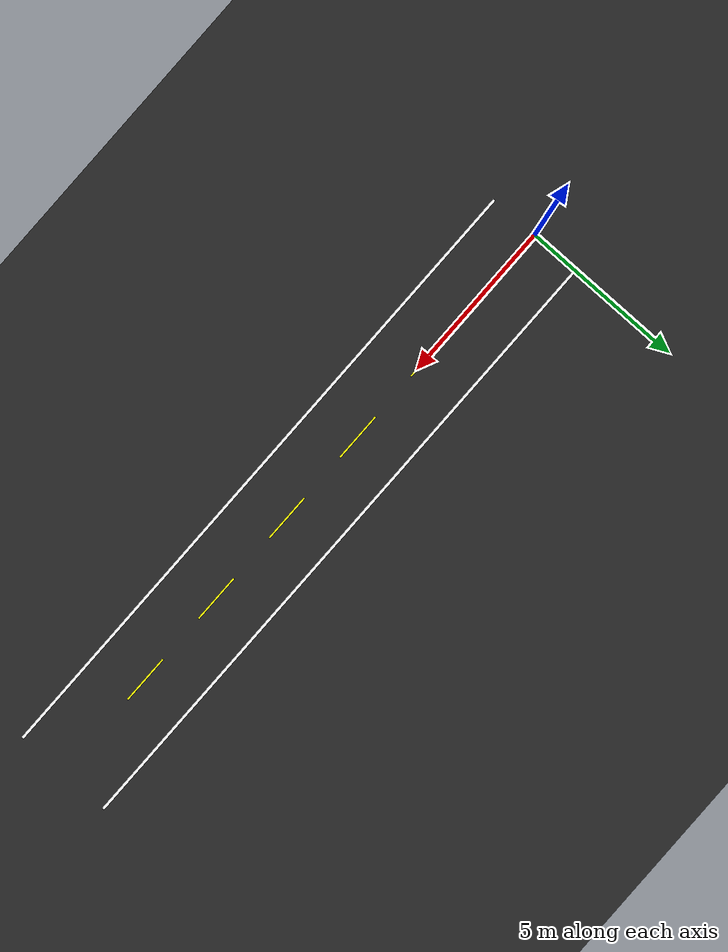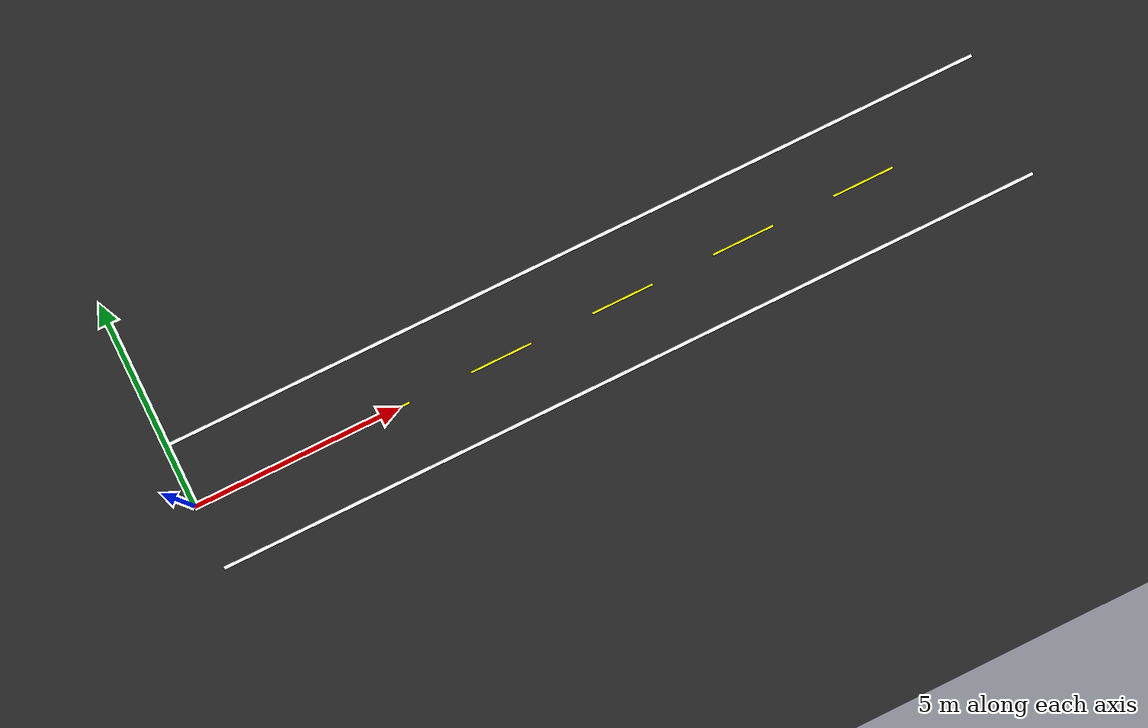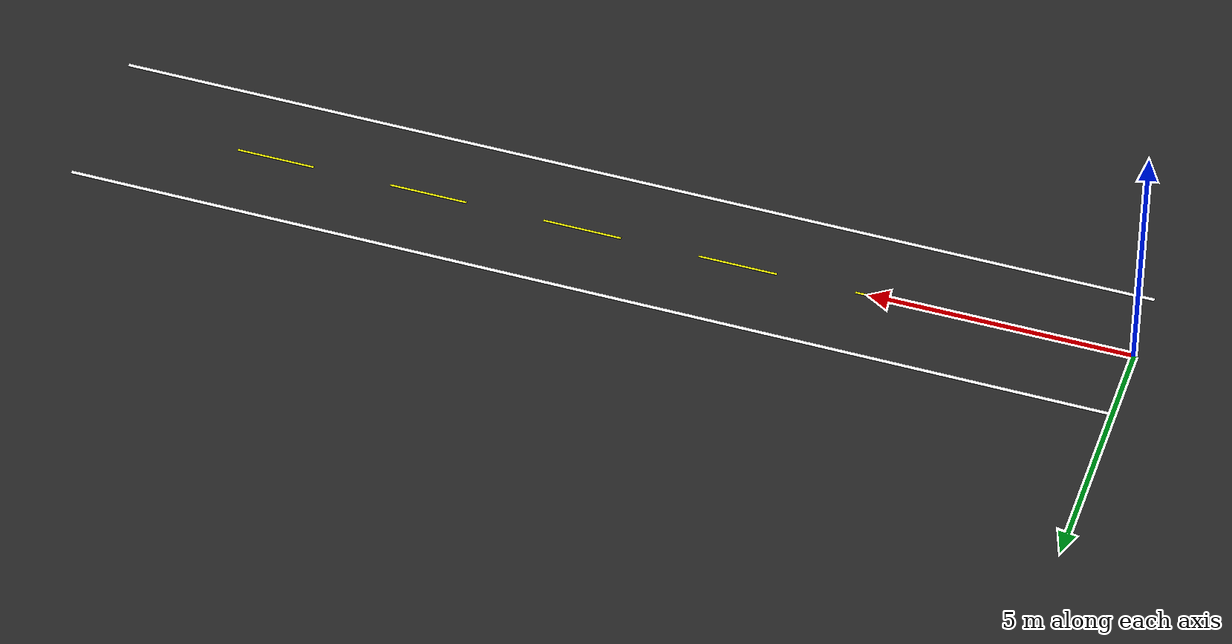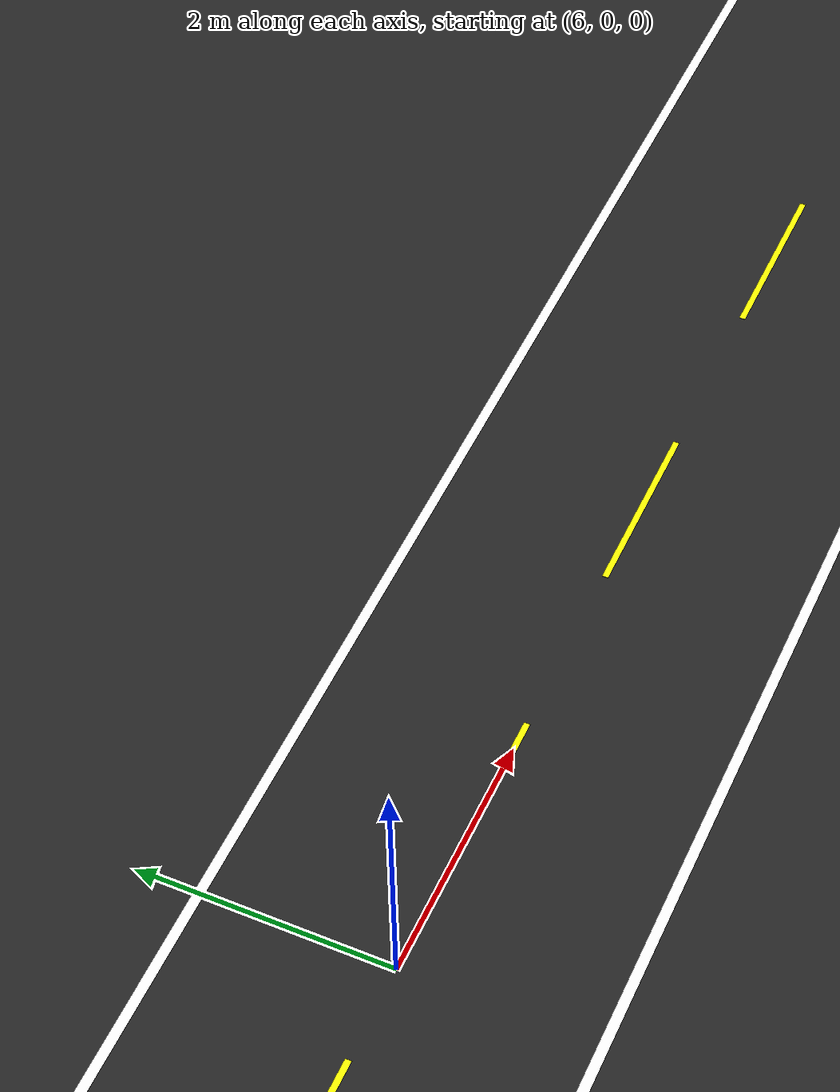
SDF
<sdf version='1.10'>
  <world name='lane_world'>
    <physics name='1ms' type='ignored'>
      <max_step_size>0.001</max_step_size>
      <real_time_factor>1</real_time_factor>
      <real_time_update_rate>1000</real_time_update_rate>
    </physics>
    <plugin name='gz::sim::systems::Physics' filename='gz-sim-physics-system'/>
    <plugin name='gz::sim::systems::UserCommands' filename='gz-sim-user-commands-system'/>
    <plugin name='gz::sim::systems::SceneBroadcaster' filename='gz-sim-scene-broadcaster-system'/>
    <plugin name='gz::sim::systems::Contact' filename='gz-sim-contact-system'/>
    <plugin name='gz::sim::systems::Sensors' filename='gz-sim-sensors-system'>
      <render_engine>ogre2</render_engine>
    </plugin>

    <!-- GPS world origin — matches your robot's navsat config -->
    <spherical_coordinates>
      <surface_model>EARTH_WGS84</surface_model>
      <world_frame_orientation>ENU</world_frame_orientation>
      <latitude_deg>47.478950</latitude_deg>
      <longitude_deg>19.057785</longitude_deg>
      <elevation>0</elevation>
      <heading_deg>0</heading_deg>
    </spherical_coordinates>

    <gravity>0 0 -9.8000000000000007</gravity>
    <magnetic_field>5.5644999999999998e-06 2.2875799999999999e-05 -4.2388400000000002e-05</magnetic_field>
    <atmosphere type='adiabatic'/>

    <scene>
      <ambient>0.400000006 0.400000006 0.400000006 1</ambient>
      <background>0.699999988 0.699999988 0.699999988 1</background>
      <shadows>true</shadows>
    </scene>

    <!-- Dark asphalt ground plane — dark color gives good contrast for white lane lines -->
    <model name='ground_plane'>
      <static>true</static>
      <link name='link'>
        <collision name='collision'>
          <geometry>
            <plane>
              <normal>0 0 1</normal>
              <size>100 100</size>
            </plane>
          </geometry>
          <surface>
            <friction><ode/></friction>
            <bounce/>
            <contact/>
          </surface>
        </collision>
        <visual name='visual'>
          <geometry>
            <plane>
              <normal>0 0 1</normal>
              <size>100 100</size>
            </plane>
          </geometry>
          <!-- Dark grey asphalt color -->
          <material>
            <ambient>0.15 0.15 0.15 1</ambient>
            <diffuse>0.15 0.15 0.15 1</diffuse>
            <specular>0.1 0.1 0.1 1</specular>
          </material>
        </visual>
        <pose>0 0 0 0 0 0</pose>
        <inertial>
          <pose>0 0 0 0 0 0</pose>
          <mass>1</mass>
          <inertia>
            <ixx>1</ixx><ixy>0</ixy><ixz>0</ixz>
            <iyy>1</iyy><iyz>0</iyz><izz>1</izz>
          </inertia>
        </inertial>
        <enable_wind>false</enable_wind>
      </link>
      <pose>0 0 0 0 0 0</pose>
      <self_collide>false</self_collide>
    </model>

    <light name='sun' type='directional'>
      <pose>0 0 10 0 0 0</pose>
      <cast_shadows>true</cast_shadows>
      <intensity>1</intensity>
      <direction>-0.5 0.10000000000000001 -0.90000000000000002</direction>
      <diffuse>0.800000012 0.800000012 0.800000012 1</diffuse>
      <specular>0.200000003 0.200000003 0.200000003 1</specular>
      <attenuation>
        <range>1000</range>
        <linear>0.01</linear>
        <constant>0.90000000000000002</constant>
        <quadratic>0.001</quadratic>
      </attenuation>
      <spot>
        <inner_angle>0</inner_angle>
        <outer_angle>0</outer_angle>
        <falloff>0</falloff>
      </spot>
    </light>

    <!-- ==================== LANE MARKINGS ==================== -->

    <!-- Left boundary line (white, solid) -->
    <model name='left_lane_line'>
      <static>true</static>
      <pose>10 1.5 0.001 0 0 0</pose>
      <link name='link'>
        <visual name='visual'>
          <geometry>
            <box><size>20 0.08 0.002</size></box>
          </geometry>
          <material>
            <ambient>1 1 1 1</ambient>
            <diffuse>1 1 1 1</diffuse>
            <specular>0.5 0.5 0.5 1</specular>
          </material>
        </visual>
        <collision name='collision'>
          <geometry>
            <box><size>20 0.08 0.002</size></box>
          </geometry>
        </collision>
        <inertial>
          <mass>1</mass>
          <inertia><ixx>1</ixx><ixy>0</ixy><ixz>0</ixz><iyy>1</iyy><iyz>0</iyz><izz>1</izz></inertia>
        </inertial>
      </link>
      <self_collide>false</self_collide>
    </model>

    <!-- Right boundary line (white, solid) -->
    <model name='right_lane_line'>
      <static>true</static>
      <pose>10 -1.5 0.001 0 0 0</pose>
      <link name='link'>
        <visual name='visual'>
          <geometry>
            <box><size>20 0.08 0.002</size></box>
          </geometry>
          <material>
            <ambient>1 1 1 1</ambient>
            <diffuse>1 1 1 1</diffuse>
            <specular>0.5 0.5 0.5 1</specular>
          </material>
        </visual>
        <collision name='collision'>
          <geometry>
            <box><size>20 0.08 0.002</size></box>
          </geometry>
        </collision>
        <inertial>
          <mass>1</mass>
          <inertia><ixx>1</ixx><ixy>0</ixy><ixz>0</ixz><iyy>1</iyy><iyz>0</iyz><izz>1</izz></inertia>
        </inertial>
      </link>
      <self_collide>false</self_collide>
    </model>

    <!-- Center dashed line (yellow) — 5 dashes, 1.5m each, 1.5m gaps -->
    <!-- Dash 1 -->
    <model name='center_dash_1'>
      <static>true</static>
      <pose>1.5 0 0.001 0 0 0</pose>
      <link name='link'>
        <visual name='visual'>
          <geometry><box><size>1.5 0.05 0.002</size></box></geometry>
          <material>
            <ambient>1 1 0 1</ambient>
            <diffuse>1 1 0 1</diffuse>
            <specular>0.3 0.3 0 1</specular>
          </material>
        </visual>
        <collision name='collision'>
          <geometry><box><size>1.5 0.05 0.002</size></box></geometry>
        </collision>
        <inertial><mass>1</mass><inertia><ixx>1</ixx><ixy>0</ixy><ixz>0</ixz><iyy>1</iyy><iyz>0</iyz><izz>1</izz></inertia></inertial>
      </link>
      <self_collide>false</self_collide>
    </model>

    <!-- Dash 2 -->
    <model name='center_dash_2'>
      <static>true</static>
      <pose>4.5 0 0.001 0 0 0</pose>
      <link name='link'>
        <visual name='visual'>
          <geometry><box><size>1.5 0.05 0.002</size></box></geometry>
          <material>
            <ambient>1 1 0 1</ambient>
            <diffuse>1 1 0 1</diffuse>
            <specular>0.3 0.3 0 1</specular>
          </material>
        </visual>
        <collision name='collision'>
          <geometry><box><size>1.5 0.05 0.002</size></box></geometry>
        </collision>
        <inertial><mass>1</mass><inertia><ixx>1</ixx><ixy>0</ixy><ixz>0</ixz><iyy>1</iyy><iyz>0</iyz><izz>1</izz></inertia></inertial>
      </link>
      <self_collide>false</self_collide>
    </model>

    <!-- Dash 3 -->
    <model name='center_dash_3'>
      <static>true</static>
      <pose>7.5 0 0.001 0 0 0</pose>
      <link name='link'>
        <visual name='visual'>
          <geometry><box><size>1.5 0.05 0.002</size></box></geometry>
          <material>
            <ambient>1 1 0 1</ambient>
            <diffuse>1 1 0 1</diffuse>
            <specular>0.3 0.3 0 1</specular>
          </material>
        </visual>
        <collision name='collision'>
          <geometry><box><size>1.5 0.05 0.002</size></box></geometry>
        </collision>
        <inertial><mass>1</mass><inertia><ixx>1</ixx><ixy>0</ixy><ixz>0</ixz><iyy>1</iyy><iyz>0</iyz><izz>1</izz></inertia></inertial>
      </link>
      <self_collide>false</self_collide>
    </model>

    <!-- Dash 4 -->
    <model name='center_dash_4'>
      <static>true</static>
      <pose>10.5 0 0.001 0 0 0</pose>
      <link name='link'>
        <visual name='visual'>
          <geometry><box><size>1.5 0.05 0.002</size></box></geometry>
          <material>
            <ambient>1 1 0 1</ambient>
            <diffuse>1 1 0 1</diffuse>
            <specular>0.3 0.3 0 1</specular>
          </material>
        </visual>
        <collision name='collision'>
          <geometry><box><size>1.5 0.05 0.002</size></box></geometry>
        </collision>
        <inertial><mass>1</mass><inertia><ixx>1</ixx><ixy>0</ixy><ixz>0</ixz><iyy>1</iyy><iyz>0</iyz><izz>1</izz></inertia></inertial>
      </link>
      <self_collide>false</self_collide>
    </model>

    <!-- Dash 5 -->
    <model name='center_dash_5'>
      <static>true</static>
      <pose>13.5 0 0.001 0 0 0</pose>
      <link name='link'>
        <visual name='visual'>
          <geometry><box><size>1.5 0.05 0.002</size></box></geometry>
          <material>
            <ambient>1 1 0 1</ambient>
            <diffuse>1 1 0 1</diffuse>
            <specular>0.3 0.3 0 1</specular>
          </material>
        </visual>
        <collision name='collision'>
          <geometry><box><size>1.5 0.05 0.002</size></box></geometry>
        </collision>
        <inertial><mass>1</mass><inertia><ixx>1</ixx><ixy>0</ixy><ixz>0</ixz><iyy>1</iyy><iyz>0</iyz><izz>1</izz></inertia></inertial>
      </link>
      <self_collide>false</self_collide>
    </model>

    <!-- Dash 6 -->
    <model name='center_dash_6'>
      <static>true</static>
      <pose>16.5 0 0.001 0 0 0</pose>
      <link name='link'>
        <visual name='visual'>
          <geometry><box><size>1.5 0.05 0.002</size></box></geometry>
          <material>
            <ambient>1 1 0 1</ambient>
            <diffuse>1 1 0 1</diffuse>
            <specular>0.3 0.3 0 1</specular>
          </material>
        </visual>
        <collision name='collision'>
          <geometry><box><size>1.5 0.05 0.002</size></box></geometry>
        </collision>
        <inertial><mass>1</mass><inertia><ixx>1</ixx><ixy>0</ixy><ixz>0</ixz><iyy>1</iyy><iyz>0</iyz><izz>1</izz></inertia></inertial>
      </link>
      <self_collide>false</self_collide>
    </model>

  </world>
</sdf>
